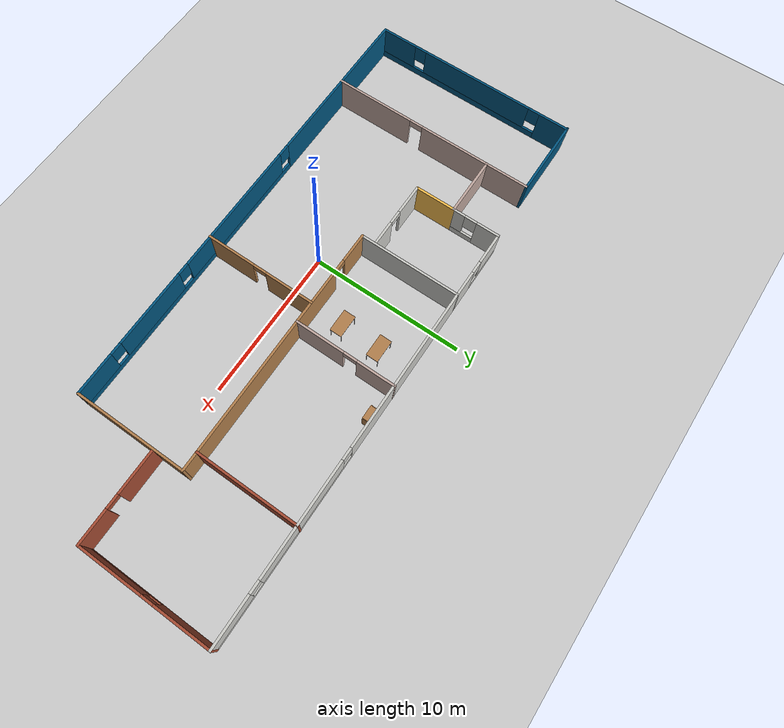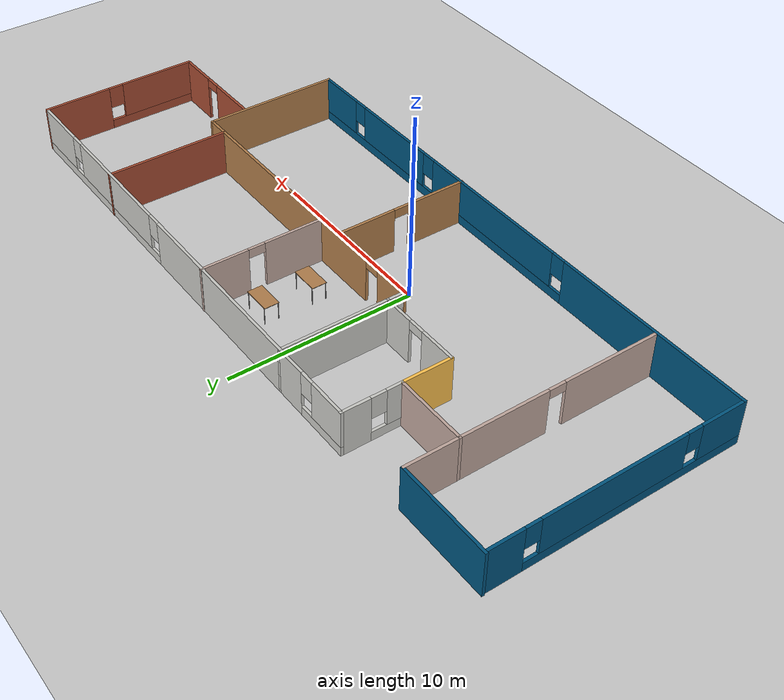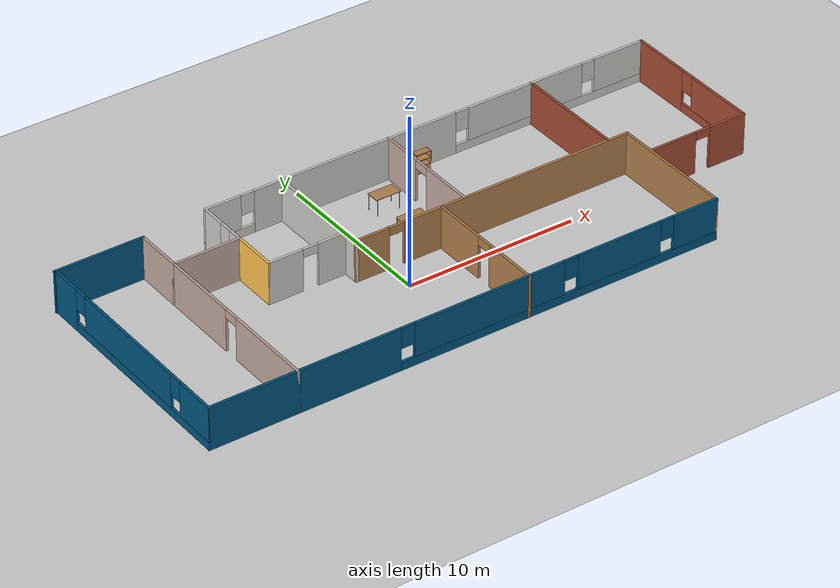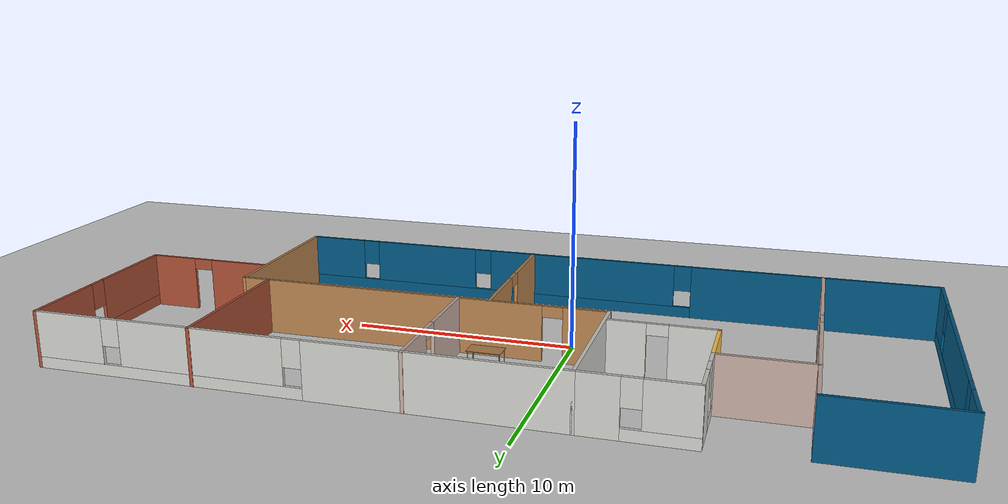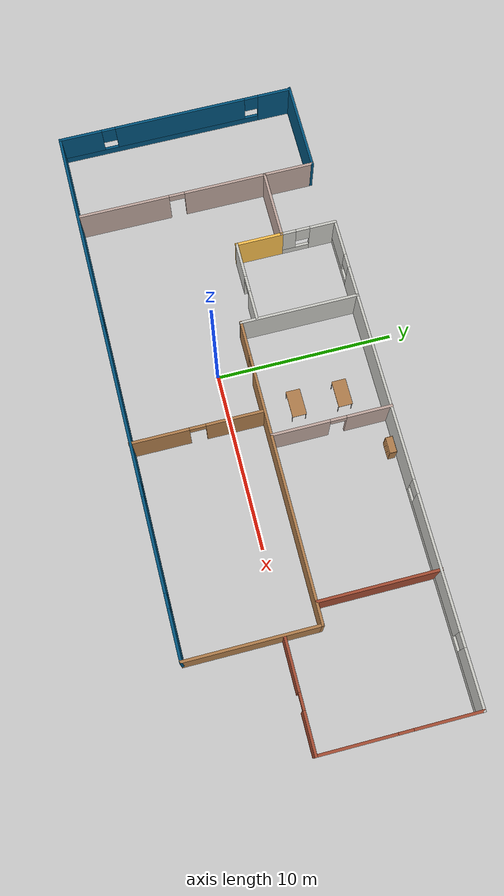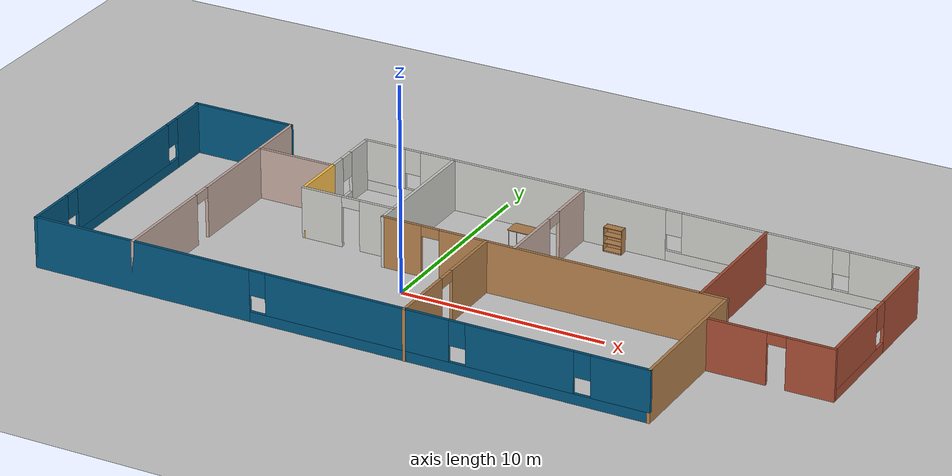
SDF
<sdf version="1.7">
 <world name="default">
  <model name="ground_plane">
   <static>1</static>
   <link name="link">
    <collision name="collision">
     <geometry><plane><normal>0 0 1</normal><size>100 100</size></plane></geometry>
     <surface>
      <contact><collide_bitmask>65535</collide_bitmask></contact>
      <friction><ode><mu>100</mu><mu2>50</mu2></ode></friction>
     </surface>
    </collision>
    <visual name="visual">
     <cast_shadows>0</cast_shadows>
     <geometry><plane><normal>0 0 1</normal><size>100 100</size></plane></geometry>
     <material>
      <script><uri>file://media/materials/scripts/gazebo.material</uri><name>Gazebo/Grey</name></script>
     </material>
    </visual>
   </link>
  </model>
  <model name="sohini_building">
   <pose>2.69266 1.47265 0 0 -0 0</pose>
   <link name="Wall_10">
    <collision name="Wall_10_Collision">
     <geometry><box><size>4 0.15 2.5</size></box></geometry>
     <pose>0 0 1.25 0 -0 0</pose>
    </collision>
    <visual name="Wall_10_Visual">
     <pose>0 0 1.25 0 -0 0</pose>
     <geometry><box><size>4 0.15 2.5</size></box></geometry>
     <material>
      <script><uri>file://media/materials/scripts/gazebo.material</uri><name>Gazebo/Grey</name></script>
      <ambient>0.760784 0.662745 0.627451 1</ambient>
     </material>
     <meta><layer>0</layer></meta>
    </visual>
    <pose>-11.175 3.87696 0 0 -0 3.14159</pose>
   </link>
   <link name="Wall_11">
    <collision name="Wall_11_Collision">
     <geometry><box><size>2.93882 0.15 2.5</size></box></geometry>
     <pose>0 0 1.25 0 -0 0</pose>
    </collision>
    <visual name="Wall_11_Visual">
     <pose>0 0 1.25 0 -0 0</pose>
     <geometry><box><size>2.93882 0.15 2.5</size></box></geometry>
     <material>
      <script><uri>file://media/materials/scripts/gazebo.material</uri><name>Gazebo/Grey</name></script>
      <ambient>0.760784 0.662745 0.627451 1</ambient>
     </material>
     <meta><layer>0</layer></meta>
    </visual>
    <pose>-13.1 5.27137 0 0 -0 1.5708</pose>
   </link>
   <link name="Wall_12">
    <collision name="Wall_12_Collision">
     <geometry><box><size>5.25 0.15 2.5</size></box></geometry>
     <pose>0 0 1.25 0 -0 0</pose>
    </collision>
    <visual name="Wall_12_Visual">
     <pose>0 0 1.25 0 -0 0</pose>
     <geometry><box><size>5.25 0.15 2.5</size></box></geometry>
     <material>
      <script><uri>file://media/materials/scripts/gazebo.material</uri><name>Gazebo/Grey</name></script>
      <ambient>0 0.333333 0.498039 1</ambient>
     </material>
     <meta><layer>0</layer></meta>
    </visual>
    <pose>-15.65 6.69637 0 0 -0 3.14159</pose>
   </link>
   <link name="Wall_14">
    <pose>6.775 6.97696 0 0 -0 0</pose>
    <visual name="Wall_14_Visual_0">
     <pose>-6.08464 0 1.25 0 -0 0</pose>
     <geometry><box><size>10.8307 0.15 2.5</size></box></geometry>
     <material>
      <script><uri>file://media/materials/scripts/gazebo.material</uri><name>Gazebo/CeilingTiled</name></script>
      <ambient>0.435294 0.796078 0.67451 1</ambient>
     </material>
     <meta><layer>0</layer></meta>
    </visual>
    <collision name="Wall_14_Collision_0">
     <geometry><box><size>10.8307 0.15 2.5</size></box></geometry>
     <pose>-6.08464 0 1.25 0 -0 0</pose>
    </collision>
    <visual name="Wall_14_Visual_1">
     <pose>5.41536 0 0.25 0 -0 0</pose>
     <geometry><box><size>12.1693 0.15 0.5</size></box></geometry>
     <material>
      <script><uri>file://media/materials/scripts/gazebo.material</uri><name>Gazebo/CeilingTiled</name></script>
      <ambient>0.435294 0.796078 0.67451 1</ambient>
     </material>
     <meta><layer>0</layer></meta>
    </visual>
    <collision name="Wall_14_Collision_1">
     <geometry><box><size>12.1693 0.15 0.5</size></box></geometry>
     <pose>5.41536 0 0.25 0 -0 0</pose>
    </collision>
    <visual name="Wall_14_Visual_2">
     <pose>3.79922 0 1.5 0 -0 0</pose>
     <geometry><box><size>7.337 0.15 2</size></box></geometry>
     <material>
      <script><uri>file://media/materials/scripts/gazebo.material</uri><name>Gazebo/CeilingTiled</name></script>
      <ambient>0.435294 0.796078 0.67451 1</ambient>
     </material>
     <meta><layer>0</layer></meta>
    </visual>
    <collision name="Wall_14_Collision_2">
     <geometry><box><size>7.337 0.15 2</size></box></geometry>
     <pose>3.79922 0 1.5 0 -0 0</pose>
    </collision>
    <visual name="Wall_14_Visual_3">
     <pose>9.88386 0 1.5 0 -0 0</pose>
     <geometry><box><size>3.23228 0.15 2</size></box></geometry>
     <material>
      <script><uri>file://media/materials/scripts/gazebo.material</uri><name>Gazebo/CeilingTiled</name></script>
      <ambient>0.435294 0.796078 0.67451 1</ambient>
     </material>
     <meta><layer>0</layer></meta>
    </visual>
    <collision name="Wall_14_Collision_3">
     <geometry><box><size>3.23228 0.15 2</size></box></geometry>
     <pose>9.88386 0 1.5 0 -0 0</pose>
    </collision>
    <visual name="Wall_14_Visual_4">
     <pose>-0.269276 0 1.9 0 -0 0</pose>
     <geometry><box><size>0.8 0.15 1.2</size></box></geometry>
     <material>
      <script><uri>file://media/materials/scripts/gazebo.material</uri><name>Gazebo/CeilingTiled</name></script>
      <ambient>0.435294 0.796078 0.67451 1</ambient>
     </material>
     <meta><layer>0</layer></meta>
    </visual>
    <collision name="Wall_14_Collision_4">
     <geometry><box><size>0.8 0.15 1.2</size></box></geometry>
     <pose>-0.269276 0 1.9 0 -0 0</pose>
    </collision>
    <visual name="Wall_14_Visual_5">
     <pose>7.86772 0 1.9 0 -0 0</pose>
     <geometry><box><size>0.8 0.15 1.2</size></box></geometry>
     <material>
      <script><uri>file://media/materials/scripts/gazebo.material</uri><name>Gazebo/CeilingTiled</name></script>
      <ambient>0.435294 0.796078 0.67451 1</ambient>
     </material>
     <meta><layer>0</layer></meta>
    </visual>
    <collision name="Wall_14_Collision_5">
     <geometry><box><size>0.8 0.15 1.2</size></box></geometry>
     <pose>7.86772 0 1.9 0 -0 0</pose>
    </collision>
   </link>
   <link name="Wall_15">
    <pose>18.2 2.67696 0 0 -0 -1.5708</pose>
    <visual name="Wall_15_Visual_0">
     <pose>-2.52709 0 1.25 0 -0 0</pose>
     <geometry><box><size>3.69583 0.15 2.5</size></box></geometry>
     <material>
      <script><uri>file://media/materials/scripts/gazebo.material</uri><name>Gazebo/Bricks</name></script>
      <ambient>1 1 1 1</ambient>
     </material>
     <meta><layer>0</layer></meta>
    </visual>
    <collision name="Wall_15_Collision_0">
     <geometry><box><size>3.69583 0.15 2.5</size></box></geometry>
     <pose>-2.52709 0 1.25 0 -0 0</pose>
    </collision>
    <visual name="Wall_15_Visual_1">
     <pose>1.84791 0 0.25 0 -0 0</pose>
     <geometry><box><size>5.05417 0.15 0.5</size></box></geometry>
     <material>
      <script><uri>file://media/materials/scripts/gazebo.material</uri><name>Gazebo/Bricks</name></script>
      <ambient>1 1 1 1</ambient>
     </material>
     <meta><layer>0</layer></meta>
    </visual>
    <collision name="Wall_15_Collision_1">
     <geometry><box><size>5.05417 0.15 0.5</size></box></geometry>
     <pose>1.84791 0 0.25 0 -0 0</pose>
    </collision>
    <visual name="Wall_15_Visual_2">
     <pose>2.24791 0 1.5 0 -0 0</pose>
     <geometry><box><size>4.25417 0.15 2</size></box></geometry>
     <material>
      <script><uri>file://media/materials/scripts/gazebo.material</uri><name>Gazebo/Bricks</name></script>
      <ambient>1 1 1 1</ambient>
     </material>
     <meta><layer>0</layer></meta>
    </visual>
    <collision name="Wall_15_Collision_2">
     <geometry><box><size>4.25417 0.15 2</size></box></geometry>
     <pose>2.24791 0 1.5 0 -0 0</pose>
    </collision>
    <visual name="Wall_15_Visual_3">
     <pose>-0.279172 0 1.9 0 -0 0</pose>
     <geometry><box><size>0.8 0.15 1.2</size></box></geometry>
     <material>
      <script><uri>file://media/materials/scripts/gazebo.material</uri><name>Gazebo/Bricks</name></script>
      <ambient>1 1 1 1</ambient>
     </material>
     <meta><layer>0</layer></meta>
    </visual>
    <collision name="Wall_15_Collision_3">
     <geometry><box><size>0.8 0.15 1.2</size></box></geometry>
     <pose>-0.279172 0 1.9 0 -0 0</pose>
    </collision>
   </link>
   <link name="Wall_16">
    <pose>15.275 -1.62304 0 0 -0 3.14159</pose>
    <visual name="Wall_16_Visual_0">
     <pose>-1.85242 0 1.25 0 -0 0</pose>
     <geometry><box><size>2.29516 0.15 2.5</size></box></geometry>
     <material>
      <script><uri>file://media/materials/scripts/gazebo.material</uri><name>Gazebo/Bricks</name></script>
      <ambient>1 1 1 1</ambient>
     </material>
     <meta><layer>0</layer></meta>
    </visual>
    <collision name="Wall_16_Collision_0">
     <geometry><box><size>2.29516 0.15 2.5</size></box></geometry>
     <pose>-1.85242 0 1.25 0 -0 0</pose>
    </collision>
    <visual name="Wall_16_Visual_1">
     <pose>1.59758 0 1.25 0 -0 0</pose>
     <geometry><box><size>2.80484 0.15 2.5</size></box></geometry>
     <material>
      <script><uri>file://media/materials/scripts/gazebo.material</uri><name>Gazebo/Bricks</name></script>
      <ambient>1 1 1 1</ambient>
     </material>
     <meta><layer>0</layer></meta>
    </visual>
    <collision name="Wall_16_Collision_1">
     <geometry><box><size>2.80484 0.15 2.5</size></box></geometry>
     <pose>1.59758 0 1.25 0 -0 0</pose>
    </collision>
    <visual name="Wall_16_Visual_2">
     <pose>-0.254841 0 2.25 0 -0 0</pose>
     <geometry><box><size>0.9 0.15 0.5</size></box></geometry>
     <material>
      <script><uri>file://media/materials/scripts/gazebo.material</uri><name>Gazebo/Bricks</name></script>
      <ambient>1 1 1 1</ambient>
     </material>
     <meta><layer>0</layer></meta>
    </visual>
    <collision name="Wall_16_Collision_2">
     <geometry><box><size>0.9 0.15 0.5</size></box></geometry>
     <pose>-0.254841 0 2.25 0 -0 0</pose>
    </collision>
   </link>
   <link name="Wall_18">
    <pose>1.94778 3.69404 0 0 -0 -1.5708</pose>
    <visual name="Wall_18_Visual_0">
     <pose>-2.09417 0 1.25 0 -0 0</pose>
     <geometry><box><size>2.56166 0.15 2.5</size></box></geometry>
     <material>
      <script><uri>file://media/materials/scripts/gazebo.material</uri><name>Gazebo/Grey</name></script>
      <ambient>0.760784 0.662745 0.627451 1</ambient>
     </material>
     <meta><layer>0</layer></meta>
    </visual>
    <collision name="Wall_18_Collision_0">
     <geometry><box><size>2.56166 0.15 2.5</size></box></geometry>
     <pose>-2.09417 0 1.25 0 -0 0</pose>
    </collision>
    <visual name="Wall_18_Visual_1">
     <pose>1.73083 0 1.25 0 -0 0</pose>
     <geometry><box><size>3.28834 0.15 2.5</size></box></geometry>
     <material>
      <script><uri>file://media/materials/scripts/gazebo.material</uri><name>Gazebo/Grey</name></script>
      <ambient>0.760784 0.662745 0.627451 1</ambient>
     </material>
     <meta><layer>0</layer></meta>
    </visual>
    <collision name="Wall_18_Collision_1">
     <geometry><box><size>3.28834 0.15 2.5</size></box></geometry>
     <pose>1.73083 0 1.25 0 -0 0</pose>
    </collision>
    <visual name="Wall_18_Visual_2">
     <pose>-0.363338 0 2.25 0 -0 0</pose>
     <geometry><box><size>0.9 0.15 0.5</size></box></geometry>
     <material>
      <script><uri>file://media/materials/scripts/gazebo.material</uri><name>Gazebo/Grey</name></script>
      <ambient>0.760784 0.662745 0.627451 1</ambient>
     </material>
     <meta><layer>0</layer></meta>
    </visual>
    <collision name="Wall_18_Collision_2">
     <geometry><box><size>0.9 0.15 0.5</size></box></geometry>
     <pose>-0.363338 0 2.25 0 -0 0</pose>
    </collision>
   </link>
   <link name="Wall_20">
    <collision name="Wall_20_Collision">
     <geometry><box><size>6.75 0.15 2.5</size></box></geometry>
     <pose>0 0 1.25 0 -0 0</pose>
    </collision>
    <visual name="Wall_20_Visual">
     <pose>0 0 1.25 0 -0 0</pose>
     <geometry><box><size>6.75 0.15 2.5</size></box></geometry>
     <material>
      <script><uri>file://media/materials/scripts/gazebo.material</uri><name>Gazebo/Bricks</name></script>
      <ambient>1 1 1 1</ambient>
     </material>
     <meta><layer>0</layer></meta>
    </visual>
    <pose>11.0025 3.69404 0 0 -0 -1.5708</pose>
   </link>
   <link name="Wall_22">
    <pose>-13.1 -1.54804 0 0 -0 -1.5708</pose>
    <visual name="Wall_22_Visual_0">
     <pose>-3.11636 0 1.25 0 -0 0</pose>
     <geometry><box><size>4.76728 0.15 2.5</size></box></geometry>
     <material>
      <script><uri>file://media/materials/scripts/gazebo.material</uri><name>Gazebo/Grey</name></script>
      <ambient>0.760784 0.662745 0.627451 1</ambient>
     </material>
     <meta><layer>0</layer></meta>
    </visual>
    <collision name="Wall_22_Collision_0">
     <geometry><box><size>4.76728 0.15 2.5</size></box></geometry>
     <pose>-3.11636 0 1.25 0 -0 0</pose>
    </collision>
    <visual name="Wall_22_Visual_1">
     <pose>2.83364 0 1.25 0 -0 0</pose>
     <geometry><box><size>5.33272 0.15 2.5</size></box></geometry>
     <material>
      <script><uri>file://media/materials/scripts/gazebo.material</uri><name>Gazebo/Grey</name></script>
      <ambient>0.760784 0.662745 0.627451 1</ambient>
     </material>
     <meta><layer>0</layer></meta>
    </visual>
    <collision name="Wall_22_Collision_1">
     <geometry><box><size>5.33272 0.15 2.5</size></box></geometry>
     <pose>2.83364 0 1.25 0 -0 0</pose>
    </collision>
    <visual name="Wall_22_Visual_2">
     <pose>-0.282721 0 2.25 0 -0 0</pose>
     <geometry><box><size>0.9 0.15 0.5</size></box></geometry>
     <material>
      <script><uri>file://media/materials/scripts/gazebo.material</uri><name>Gazebo/Grey</name></script>
      <ambient>0.760784 0.662745 0.627451 1</ambient>
     </material>
     <meta><layer>0</layer></meta>
    </visual>
    <collision name="Wall_22_Collision_2">
     <geometry><box><size>0.9 0.15 0.5</size></box></geometry>
     <pose>-0.282721 0 2.25 0 -0 0</pose>
    </collision>
   </link>
   <link name="Wall_26">
    <collision name="Wall_26_Collision">
     <geometry><box><size>2.75 0.15 2.5</size></box></geometry>
     <pose>0 0 1.25 0 -0 0</pose>
    </collision>
    <visual name="Wall_26_Visual">
     <pose>0 0 1.25 0 -0 0</pose>
     <geometry><box><size>2.75 0.15 2.5</size></box></geometry>
     <material>
      <script><uri>file://media/materials/scripts/gazebo.material</uri><name>Gazebo/Grey</name></script>
      <ambient>1 0.764706 0.305882 1</ambient>
     </material>
     <meta><layer>0</layer></meta>
    </visual>
    <pose>-9.25 2.57696 0 0 -0 -1.5708</pose>
   </link>
   <link name="Wall_27">
    <pose>-6.95 1.27696 0 0 -0 0</pose>
    <visual name="Wall_27_Visual_0">
     <pose>-1.33801 0 1.25 0 -0 0</pose>
     <geometry><box><size>2.07397 0.15 2.5</size></box></geometry>
     <material>
      <script><uri>file://media/materials/scripts/gazebo.material</uri><name>Gazebo/CeilingTiled</name></script>
      <ambient>1 0.764706 0.305882 1</ambient>
     </material>
     <meta><layer>0</layer></meta>
    </visual>
    <collision name="Wall_27_Collision_0">
     <geometry><box><size>2.07397 0.15 2.5</size></box></geometry>
     <pose>-1.33801 0 1.25 0 -0 0</pose>
    </collision>
    <visual name="Wall_27_Visual_1">
     <pose>1.48699 0 1.25 0 -0 0</pose>
     <geometry><box><size>1.77602 0.15 2.5</size></box></geometry>
     <material>
      <script><uri>file://media/materials/scripts/gazebo.material</uri><name>Gazebo/CeilingTiled</name></script>
      <ambient>1 0.764706 0.305882 1</ambient>
     </material>
     <meta><layer>0</layer></meta>
    </visual>
    <collision name="Wall_27_Collision_1">
     <geometry><box><size>1.77602 0.15 2.5</size></box></geometry>
     <pose>1.48699 0 1.25 0 -0 0</pose>
    </collision>
    <visual name="Wall_27_Visual_2">
     <pose>0.148975 0 2.25 0 -0 0</pose>
     <geometry><box><size>0.9 0.15 0.5</size></box></geometry>
     <material>
      <script><uri>file://media/materials/scripts/gazebo.material</uri><name>Gazebo/CeilingTiled</name></script>
      <ambient>1 0.764706 0.305882 1</ambient>
     </material>
     <meta><layer>0</layer></meta>
    </visual>
    <collision name="Wall_27_Collision_2">
     <geometry><box><size>0.9 0.15 0.5</size></box></geometry>
     <pose>0.148975 0 2.25 0 -0 0</pose>
    </collision>
   </link>
   <link name="Wall_29">
    <pose>0.540629 -3.31904 0 0 -0 -1.5708</pose>
    <visual name="Wall_29_Visual_0">
     <pose>-2.10209 0 1.25 0 -0 0</pose>
     <geometry><box><size>3.29583 0.15 2.5</size></box></geometry>
     <material>
      <script><uri>file://media/materials/scripts/gazebo.material</uri><name>Gazebo/Wood</name></script>
      <ambient>1 1 1 1</ambient>
     </material>
     <meta><layer>0</layer></meta>
    </visual>
    <collision name="Wall_29_Collision_0">
     <geometry><box><size>3.29583 0.15 2.5</size></box></geometry>
     <pose>-2.10209 0 1.25 0 -0 0</pose>
    </collision>
    <visual name="Wall_29_Visual_1">
     <pose>2.09791 0 1.25 0 -0 0</pose>
     <geometry><box><size>3.30417 0.15 2.5</size></box></geometry>
     <material>
      <script><uri>file://media/materials/scripts/gazebo.material</uri><name>Gazebo/Wood</name></script>
      <ambient>1 1 1 1</ambient>
     </material>
     <meta><layer>0</layer></meta>
    </visual>
    <collision name="Wall_29_Collision_1">
     <geometry><box><size>3.30417 0.15 2.5</size></box></geometry>
     <pose>2.09791 0 1.25 0 -0 0</pose>
    </collision>
    <visual name="Wall_29_Visual_2">
     <pose>-0.004173 0 2.25 0 -0 0</pose>
     <geometry><box><size>0.9 0.15 0.5</size></box></geometry>
     <material>
      <script><uri>file://media/materials/scripts/gazebo.material</uri><name>Gazebo/Wood</name></script>
      <ambient>1 1 1 1</ambient>
     </material>
     <meta><layer>0</layer></meta>
    </visual>
    <collision name="Wall_29_Collision_2">
     <geometry><box><size>0.9 0.15 0.5</size></box></geometry>
     <pose>-0.004173 0 2.25 0 -0 0</pose>
    </collision>
   </link>
   <link name="Wall_3">
    <pose>-18.15 -0.173043 0 0 -0 -1.5708</pose>
    <visual name="Wall_3_Visual_0">
     <pose>-5.90566 0 1.25 0 -0 0</pose>
     <geometry><box><size>1.93868 0.15 2.5</size></box></geometry>
     <material>
      <script><uri>file://media/materials/scripts/gazebo.material</uri><name>Gazebo/Grey</name></script>
      <ambient>0 0.333333 0.498039 1</ambient>
     </material>
     <meta><layer>0</layer></meta>
    </visual>
    <collision name="Wall_3_Collision_0">
     <geometry><box><size>1.93868 0.15 2.5</size></box></geometry>
     <pose>-5.90566 0 1.25 0 -0 0</pose>
    </collision>
    <visual name="Wall_3_Visual_1">
     <pose>0.969339 0 0.25 0 -0 0</pose>
     <geometry><box><size>11.8113 0.15 0.5</size></box></geometry>
     <material>
      <script><uri>file://media/materials/scripts/gazebo.material</uri><name>Gazebo/Grey</name></script>
      <ambient>0 0.333333 0.498039 1</ambient>
     </material>
     <meta><layer>0</layer></meta>
    </visual>
    <collision name="Wall_3_Collision_1">
     <geometry><box><size>11.8113 0.15 0.5</size></box></geometry>
     <pose>0.969339 0 0.25 0 -0 0</pose>
    </collision>
    <visual name="Wall_3_Visual_2">
     <pose>-0.284281 0 1.5 0 -0 0</pose>
     <geometry><box><size>7.70408 0.15 2</size></box></geometry>
     <material>
      <script><uri>file://media/materials/scripts/gazebo.material</uri><name>Gazebo/Grey</name></script>
      <ambient>0 0.333333 0.498039 1</ambient>
     </material>
     <meta><layer>0</layer></meta>
    </visual>
    <collision name="Wall_3_Collision_2">
     <geometry><box><size>7.70408 0.15 2</size></box></geometry>
     <pose>-0.284281 0 1.5 0 -0 0</pose>
    </collision>
    <visual name="Wall_3_Visual_3">
     <pose>5.62138 0 1.5 0 -0 0</pose>
     <geometry><box><size>2.50724 0.15 2</size></box></geometry>
     <material>
      <script><uri>file://media/materials/scripts/gazebo.material</uri><name>Gazebo/Grey</name></script>
      <ambient>0 0.333333 0.498039 1</ambient>
     </material>
     <meta><layer>0</layer></meta>
    </visual>
    <collision name="Wall_3_Collision_3">
     <geometry><box><size>2.50724 0.15 2</size></box></geometry>
     <pose>5.62138 0 1.5 0 -0 0</pose>
    </collision>
    <visual name="Wall_3_Visual_4">
     <pose>-4.53632 0 1.9 0 -0 0</pose>
     <geometry><box><size>0.8 0.15 1.2</size></box></geometry>
     <material>
      <script><uri>file://media/materials/scripts/gazebo.material</uri><name>Gazebo/Grey</name></script>
      <ambient>0 0.333333 0.498039 1</ambient>
     </material>
     <meta><layer>0</layer></meta>
    </visual>
    <collision name="Wall_3_Collision_4">
     <geometry><box><size>0.8 0.15 1.2</size></box></geometry>
     <pose>-4.53632 0 1.9 0 -0 0</pose>
    </collision>
    <visual name="Wall_3_Visual_5">
     <pose>3.96776 0 1.9 0 -0 0</pose>
     <geometry><box><size>0.8 0.15 1.2</size></box></geometry>
     <material>
      <script><uri>file://media/materials/scripts/gazebo.material</uri><name>Gazebo/Grey</name></script>
      <ambient>0 0.333333 0.498039 1</ambient>
     </material>
     <meta><layer>0</layer></meta>
    </visual>
    <collision name="Wall_3_Collision_5">
     <geometry><box><size>0.8 0.15 1.2</size></box></geometry>
     <pose>3.96776 0 1.9 0 -0 0</pose>
    </collision>
   </link>
   <link name="Wall_4">
    <pose>-2.975 -6.97304 0 0 -0 0</pose>
    <visual name="Wall_4_Visual_0">
     <pose>-9.70742 0 1.25 0 -0 0</pose>
     <geometry><box><size>11.0852 0.15 2.5</size></box></geometry>
     <material>
      <script><uri>file://media/materials/scripts/gazebo.material</uri><name>Gazebo/Grey</name></script>
      <ambient>0 0.333333 0.498039 1</ambient>
     </material>
     <meta><layer>0</layer></meta>
    </visual>
    <collision name="Wall_4_Collision_0">
     <geometry><box><size>11.0852 0.15 2.5</size></box></geometry>
     <pose>-9.70742 0 1.25 0 -0 0</pose>
    </collision>
    <visual name="Wall_4_Visual_1">
     <pose>5.54258 0 0.25 0 -0 0</pose>
     <geometry><box><size>19.4148 0.15 0.5</size></box></geometry>
     <material>
      <script><uri>file://media/materials/scripts/gazebo.material</uri><name>Gazebo/Grey</name></script>
      <ambient>0 0.333333 0.498039 1</ambient>
     </material>
     <meta><layer>0</layer></meta>
    </visual>
    <collision name="Wall_4_Collision_1">
     <geometry><box><size>19.4148 0.15 0.5</size></box></geometry>
     <pose>5.54258 0 0.25 0 -0 0</pose>
    </collision>
    <visual name="Wall_4_Visual_2">
     <pose>1.16018 0 1.5 0 -0 0</pose>
     <geometry><box><size>9.05005 0.15 2</size></box></geometry>
     <material>
      <script><uri>file://media/materials/scripts/gazebo.material</uri><name>Gazebo/Grey</name></script>
      <ambient>0 0.333333 0.498039 1</ambient>
     </material>
     <meta><layer>0</layer></meta>
    </visual>
    <collision name="Wall_4_Collision_2">
     <geometry><box><size>9.05005 0.15 2</size></box></geometry>
     <pose>1.16018 0 1.5 0 -0 0</pose>
    </collision>
    <visual name="Wall_4_Visual_3">
     <pose>9.06776 0 1.5 0 -0 0</pose>
     <geometry><box><size>5.16509 0.15 2</size></box></geometry>
     <material>
      <script><uri>file://media/materials/scripts/gazebo.material</uri><name>Gazebo/Grey</name></script>
      <ambient>0 0.333333 0.498039 1</ambient>
     </material>
     <meta><layer>0</layer></meta>
    </visual>
    <collision name="Wall_4_Collision_3">
     <geometry><box><size>5.16509 0.15 2</size></box></geometry>
     <pose>9.06776 0 1.5 0 -0 0</pose>
    </collision>
    <visual name="Wall_4_Visual_4">
     <pose>13.8502 0 1.5 0 -0 0</pose>
     <geometry><box><size>2.7997 0.15 2</size></box></geometry>
     <material>
      <script><uri>file://media/materials/scripts/gazebo.material</uri><name>Gazebo/Grey</name></script>
      <ambient>0 0.333333 0.498039 1</ambient>
     </material>
     <meta><layer>0</layer></meta>
    </visual>
    <collision name="Wall_4_Collision_4">
     <geometry><box><size>2.7997 0.15 2</size></box></geometry>
     <pose>13.8502 0 1.5 0 -0 0</pose>
    </collision>
    <visual name="Wall_4_Visual_5">
     <pose>-3.76485 0 1.9 0 -0 0</pose>
     <geometry><box><size>0.8 0.15 1.2</size></box></geometry>
     <material>
      <script><uri>file://media/materials/scripts/gazebo.material</uri><name>Gazebo/Grey</name></script>
      <ambient>0 0.333333 0.498039 1</ambient>
     </material>
     <meta><layer>0</layer></meta>
    </visual>
    <collision name="Wall_4_Collision_5">
     <geometry><box><size>0.8 0.15 1.2</size></box></geometry>
     <pose>-3.76485 0 1.9 0 -0 0</pose>
    </collision>
    <visual name="Wall_4_Visual_6">
     <pose>6.08521 0 1.9 0 -0 0</pose>
     <geometry><box><size>0.8 0.15 1.2</size></box></geometry>
     <material>
      <script><uri>file://media/materials/scripts/gazebo.material</uri><name>Gazebo/Grey</name></script>
      <ambient>0 0.333333 0.498039 1</ambient>
     </material>
     <meta><layer>0</layer></meta>
    </visual>
    <collision name="Wall_4_Collision_6">
     <geometry><box><size>0.8 0.15 1.2</size></box></geometry>
     <pose>6.08521 0 1.9 0 -0 0</pose>
    </collision>
    <visual name="Wall_4_Visual_7">
     <pose>12.0503 0 1.9 0 -0 0</pose>
     <geometry><box><size>0.8 0.15 1.2</size></box></geometry>
     <material>
      <script><uri>file://media/materials/scripts/gazebo.material</uri><name>Gazebo/Grey</name></script>
      <ambient>0 0.333333 0.498039 1</ambient>
     </material>
     <meta><layer>0</layer></meta>
    </visual>
    <collision name="Wall_4_Collision_7">
     <geometry><box><size>0.8 0.15 1.2</size></box></geometry>
     <pose>12.0503 0 1.9 0 -0 0</pose>
    </collision>
   </link>
   <link name="Wall_5">
    <collision name="Wall_5_Collision">
     <geometry><box><size>7.5 0.15 2.5</size></box></geometry>
     <pose>0 0 1.25 0 -0 0</pose>
    </collision>
    <visual name="Wall_5_Visual">
     <pose>0 0 1.25 0 -0 0</pose>
     <geometry><box><size>7.5 0.15 2.5</size></box></geometry>
     <material>
      <script><uri>file://media/materials/scripts/gazebo.material</uri><name>Gazebo/Wood</name></script>
      <ambient>1 1 1 1</ambient>
     </material>
     <meta><layer>0</layer></meta>
    </visual>
    <pose>12.2 -3.29804 0 0 -0 1.5708</pose>
   </link>
   <link name="Wall_6">
    <pose>3.775 0.376957 0 0 -0 3.14159</pose>
    <visual name="Wall_6_Visual_0">
     <pose>-1.46596 0 1.25 0 -0 0</pose>
     <geometry><box><size>14.0681 0.15 2.5</size></box></geometry>
     <material>
      <script><uri>file://media/materials/scripts/gazebo.material</uri><name>Gazebo/Wood</name></script>
      <ambient>1 1 1 1</ambient>
     </material>
     <meta><layer>0</layer></meta>
    </visual>
    <collision name="Wall_6_Collision_0">
     <geometry><box><size>14.0681 0.15 2.5</size></box></geometry>
     <pose>-1.46596 0 1.25 0 -0 0</pose>
    </collision>
    <visual name="Wall_6_Visual_1">
     <pose>7.48404 0 1.25 0 -0 0</pose>
     <geometry><box><size>2.03192 0.15 2.5</size></box></geometry>
     <material>
      <script><uri>file://media/materials/scripts/gazebo.material</uri><name>Gazebo/Wood</name></script>
      <ambient>1 1 1 1</ambient>
     </material>
     <meta><layer>0</layer></meta>
    </visual>
    <collision name="Wall_6_Collision_1">
     <geometry><box><size>2.03192 0.15 2.5</size></box></geometry>
     <pose>7.48404 0 1.25 0 -0 0</pose>
    </collision>
    <visual name="Wall_6_Visual_2">
     <pose>6.01808 0 2.25 0 -0 0</pose>
     <geometry><box><size>0.9 0.15 0.5</size></box></geometry>
     <material>
      <script><uri>file://media/materials/scripts/gazebo.material</uri><name>Gazebo/Wood</name></script>
      <ambient>1 1 1 1</ambient>
     </material>
     <meta><layer>0</layer></meta>
    </visual>
    <collision name="Wall_6_Collision_2">
     <geometry><box><size>0.9 0.15 0.5</size></box></geometry>
     <pose>6.01808 0 2.25 0 -0 0</pose>
    </collision>
   </link>
   <link name="Wall_7">
    <collision name="Wall_7_Collision">
     <geometry><box><size>6.75 0.15 2.5</size></box></geometry>
     <pose>0 0 1.25 0 -0 0</pose>
    </collision>
    <visual name="Wall_7_Visual">
     <pose>0 0 1.25 0 -0 0</pose>
     <geometry><box><size>6.75 0.15 2.5</size></box></geometry>
     <material>
      <script><uri>file://media/materials/scripts/gazebo.material</uri><name>Gazebo/CeilingTiled</name></script>
      <ambient>1 0.764706 0.305882 1</ambient>
     </material>
     <meta><layer>0</layer></meta>
    </visual>
    <pose>-4.65 3.67696 0 0 -0 1.5708</pose>
   </link>
   <link name="Wall_8">
    <pose>-6.95 6.97696 0 0 -0 3.14159</pose>
    <visual name="Wall_8_Visual_0">
     <pose>-1.47728 0 1.25 0 -0 0</pose>
     <geometry><box><size>1.79543 0.15 2.5</size></box></geometry>
     <material>
      <script><uri>file://media/materials/scripts/gazebo.material</uri><name>Gazebo/CeilingTiled</name></script>
      <ambient>1 0.764706 0.305882 1</ambient>
     </material>
     <meta><layer>0</layer></meta>
    </visual>
    <collision name="Wall_8_Collision_0">
     <geometry><box><size>1.79543 0.15 2.5</size></box></geometry>
     <pose>-1.47728 0 1.25 0 -0 0</pose>
    </collision>
    <visual name="Wall_8_Visual_1">
     <pose>0.897718 0 0.25 0 -0 0</pose>
     <geometry><box><size>2.95457 0.15 0.5</size></box></geometry>
     <material>
      <script><uri>file://media/materials/scripts/gazebo.material</uri><name>Gazebo/CeilingTiled</name></script>
      <ambient>1 0.764706 0.305882 1</ambient>
     </material>
     <meta><layer>0</layer></meta>
    </visual>
    <collision name="Wall_8_Collision_1">
     <geometry><box><size>2.95457 0.15 0.5</size></box></geometry>
     <pose>0.897718 0 0.25 0 -0 0</pose>
    </collision>
    <visual name="Wall_8_Visual_2">
     <pose>1.29772 0 1.5 0 -0 0</pose>
     <geometry><box><size>2.15456 0.15 2</size></box></geometry>
     <material>
      <script><uri>file://media/materials/scripts/gazebo.material</uri><name>Gazebo/CeilingTiled</name></script>
      <ambient>1 0.764706 0.305882 1</ambient>
     </material>
     <meta><layer>0</layer></meta>
    </visual>
    <collision name="Wall_8_Collision_2">
     <geometry><box><size>2.15456 0.15 2</size></box></geometry>
     <pose>1.29772 0 1.5 0 -0 0</pose>
    </collision>
    <visual name="Wall_8_Visual_3">
     <pose>-0.179565 0 1.9 0 -0 0</pose>
     <geometry><box><size>0.8 0.15 1.2</size></box></geometry>
     <material>
      <script><uri>file://media/materials/scripts/gazebo.material</uri><name>Gazebo/CeilingTiled</name></script>
      <ambient>1 0.764706 0.305882 1</ambient>
     </material>
     <meta><layer>0</layer></meta>
    </visual>
    <collision name="Wall_8_Collision_3">
     <geometry><box><size>0.8 0.15 1.2</size></box></geometry>
     <pose>-0.179565 0 1.9 0 -0 0</pose>
    </collision>
   </link>
   <link name="Wall_9">
    <pose>-9.25 5.42696 0 0 -0 -1.5708</pose>
    <visual name="Wall_9_Visual_0">
     <pose>-0.847744 0 1.25 0 -0 0</pose>
     <geometry><box><size>1.55451 0.15 2.5</size></box></geometry>
     <material>
      <script><uri>file://media/materials/scripts/gazebo.material</uri><name>Gazebo/CeilingTiled</name></script>
      <ambient>1 0.764706 0.305882 1</ambient>
     </material>
     <meta><layer>0</layer></meta>
    </visual>
    <collision name="Wall_9_Collision_0">
     <geometry><box><size>1.55451 0.15 2.5</size></box></geometry>
     <pose>-0.847744 0 1.25 0 -0 0</pose>
    </collision>
    <visual name="Wall_9_Visual_1">
     <pose>0.777256 0 0.25 0 -0 0</pose>
     <geometry><box><size>1.69549 0.15 0.5</size></box></geometry>
     <material>
      <script><uri>file://media/materials/scripts/gazebo.material</uri><name>Gazebo/CeilingTiled</name></script>
      <ambient>1 0.764706 0.305882 1</ambient>
     </material>
     <meta><layer>0</layer></meta>
    </visual>
    <collision name="Wall_9_Collision_1">
     <geometry><box><size>1.69549 0.15 0.5</size></box></geometry>
     <pose>0.777256 0 0.25 0 -0 0</pose>
    </collision>
    <visual name="Wall_9_Visual_2">
     <pose>1.17726 0 1.5 0 -0 0</pose>
     <geometry><box><size>0.895488 0.15 2</size></box></geometry>
     <material>
      <script><uri>file://media/materials/scripts/gazebo.material</uri><name>Gazebo/CeilingTiled</name></script>
      <ambient>1 0.764706 0.305882 1</ambient>
     </material>
     <meta><layer>0</layer></meta>
    </visual>
    <collision name="Wall_9_Collision_2">
     <geometry><box><size>0.895488 0.15 2</size></box></geometry>
     <pose>1.17726 0 1.5 0 -0 0</pose>
    </collision>
    <visual name="Wall_9_Visual_3">
     <pose>0.329512 0 1.9 0 -0 0</pose>
     <geometry><box><size>0.8 0.15 1.2</size></box></geometry>
     <material>
      <script><uri>file://media/materials/scripts/gazebo.material</uri><name>Gazebo/CeilingTiled</name></script>
      <ambient>1 0.764706 0.305882 1</ambient>
     </material>
     <meta><layer>0</layer></meta>
    </visual>
    <collision name="Wall_9_Collision_3">
     <geometry><box><size>0.8 0.15 1.2</size></box></geometry>
     <pose>0.329512 0 1.9 0 -0 0</pose>
    </collision>
   </link>
   <static>1</static>
  </model>
  <model name="bookshelf_0">
   <static>1</static>
   <link name="link">
    <inertial><mass>1</mass></inertial>
    <collision name="back">
     <pose>0 0.005 0.6 0 -0 0</pose>
     <geometry><box><size>0.9 0.01 1.2</size></box></geometry>
    </collision>
    <visual name="visual1">
     <pose>0 0.005 0.6 0 -0 0</pose>
     <geometry><box><size>0.9 0.01 1.2</size></box></geometry>
     <material>
      <script><uri>file://media/materials/scripts/gazebo.material</uri><name>Gazebo/Wood</name></script>
     </material>
    </visual>
    <collision name="left_side">
     <pose>0.45 -0.195 0.6 0 -0 0</pose>
     <geometry><box><size>0.02 0.4 1.2</size></box></geometry>
    </collision>
    <visual name="visual2">
     <pose>0.45 -0.195 0.6 0 -0 0</pose>
     <geometry><box><size>0.02 0.4 1.2</size></box></geometry>
     <material>
      <script><uri>file://media/materials/scripts/gazebo.material</uri><name>Gazebo/Wood</name></script>
     </material>
    </visual>
    <collision name="right_side">
     <pose>-0.45 -0.195 0.6 0 -0 0</pose>
     <geometry><box><size>0.02 0.4 1.2</size></box></geometry>
    </collision>
    <visual name="visual3">
     <pose>-0.45 -0.195 0.6 0 -0 0</pose>
     <geometry><box><size>0.02 0.4 1.2</size></box></geometry>
     <material>
      <script><uri>file://media/materials/scripts/gazebo.material</uri><name>Gazebo/Wood</name></script>
     </material>
    </visual>
    <collision name="bottom">
     <pose>0 -0.195 0.03 0 -0 0</pose>
     <geometry><box><size>0.88 0.4 0.06</size></box></geometry>
    </collision>
    <visual name="visual4">
     <pose>0 -0.195 0.03 0 -0 0</pose>
     <geometry><box><size>0.88 0.4 0.06</size></box></geometry>
     <material>
      <script><uri>file://media/materials/scripts/gazebo.material</uri><name>Gazebo/Wood</name></script>
     </material>
    </visual>
    <collision name="top">
     <pose>0 -0.195 1.19 0 -0 0</pose>
     <geometry><box><size>0.88 0.4 0.02</size></box></geometry>
    </collision>
    <visual name="visual5">
     <pose>0 -0.195 1.19 0 -0 0</pose>
     <geometry><box><size>0.88 0.4 0.02</size></box></geometry>
     <material>
      <script><uri>file://media/materials/scripts/gazebo.material</uri><name>Gazebo/Wood</name></script>
     </material>
    </visual>
    <collision name="low_shelf">
     <pose>0 -0.195 0.43 0 -0 0</pose>
     <geometry><box><size>0.88 0.4 0.02</size></box></geometry>
    </collision>
    <visual name="visual6">
     <pose>0 -0.195 0.43 0 -0 0</pose>
     <geometry><box><size>0.88 0.4 0.02</size></box></geometry>
     <material>
      <script><uri>file://media/materials/scripts/gazebo.material</uri><name>Gazebo/Wood</name></script>
     </material>
    </visual>
    <collision name="high_shelf">
     <pose>0 -0.195 0.8 0 -0 0</pose>
     <geometry><box><size>0.88 0.4 0.02</size></box></geometry>
    </collision>
    <visual name="visual7">
     <pose>0 -0.195 0.8 0 -0 0</pose>
     <geometry><box><size>0.88 0.4 0.02</size></box></geometry>
     <material>
      <script><uri>file://media/materials/scripts/gazebo.material</uri><name>Gazebo/Wood</name></script>
     </material>
    </visual>
   </link>
   <pose>6.40986 8.26689 0 0 -0 0</pose>
  </model>
  <model name="table_5">
   <static>1</static>
   <link name="link">
    <collision name="surface">
     <pose>0 0 1 0 -0 0</pose>
     <geometry><box><size>1.5 0.8 0.03</size></box></geometry>
     <surface><friction><ode><mu>0.6</mu><mu2>0.6</mu2></ode></friction></surface>
    </collision>
    <visual name="visual1">
     <pose>0 0 1 0 -0 0</pose>
     <geometry><box><size>1.5 0.8 0.03</size></box></geometry>
     <material>
      <script><uri>file://media/materials/scripts/gazebo.material</uri><name>Gazebo/Wood</name></script>
     </material>
    </visual>
    <collision name="front_left_leg">
     <pose>0.68 0.38 0.5 0 -0 0</pose>
     <geometry><cylinder><radius>0.02</radius><length>1</length></cylinder></geometry>
    </collision>
    <visual name="front_left_leg">
     <pose>0.68 0.38 0.5 0 -0 0</pose>
     <geometry><cylinder><radius>0.02</radius><length>1</length></cylinder></geometry>
     <material>
      <script><uri>file://media/materials/scripts/gazebo.material</uri><name>Gazebo/Grey</name></script>
     </material>
    </visual>
    <collision name="front_right_leg">
     <pose>0.68 -0.38 0.5 0 -0 0</pose>
     <geometry><cylinder><radius>0.02</radius><length>1</length></cylinder></geometry>
    </collision>
    <visual name="front_right_leg">
     <pose>0.68 -0.38 0.5 0 -0 0</pose>
     <geometry><cylinder><radius>0.02</radius><length>1</length></cylinder></geometry>
     <material>
      <script><uri>file://media/materials/scripts/gazebo.material</uri><name>Gazebo/Grey</name></script>
     </material>
    </visual>
    <collision name="back_right_leg">
     <pose>-0.68 -0.38 0.5 0 -0 0</pose>
     <geometry><cylinder><radius>0.02</radius><length>1</length></cylinder></geometry>
    </collision>
    <visual name="back_right_leg">
     <pose>-0.68 -0.38 0.5 0 -0 0</pose>
     <geometry><cylinder><radius>0.02</radius><length>1</length></cylinder></geometry>
     <material>
      <script><uri>file://media/materials/scripts/gazebo.material</uri><name>Gazebo/Grey</name></script>
     </material>
    </visual>
    <collision name="back_left_leg">
     <pose>-0.68 0.38 0.5 0 -0 0</pose>
     <geometry><cylinder><radius>0.02</radius><length>1</length></cylinder></geometry>
    </collision>
    <visual name="back_left_leg">
     <pose>-0.68 0.38 0.5 0 -0 0</pose>
     <geometry><cylinder><radius>0.02</radius><length>1</length></cylinder></geometry>
     <material>
      <script><uri>file://media/materials/scripts/gazebo.material</uri><name>Gazebo/Grey</name></script>
     </material>
    </visual>
   </link>
   <pose>2.86173 6.33154 0 0 -0 0</pose>
  </model>
  <model name="table_6">
   <static>1</static>
   <link name="link">
    <collision name="surface">
     <pose>0 0 1 0 -0 0</pose>
     <geometry><box><size>1.5 0.8 0.03</size></box></geometry>
     <surface><friction><ode><mu>0.6</mu><mu2>0.6</mu2></ode></friction></surface>
    </collision>
    <visual name="visual1">
     <pose>0 0 1 0 -0 0</pose>
     <geometry><box><size>1.5 0.8 0.03</size></box></geometry>
     <material>
      <script><uri>file://media/materials/scripts/gazebo.material</uri><name>Gazebo/Wood</name></script>
     </material>
    </visual>
    <collision name="front_left_leg">
     <pose>0.68 0.38 0.5 0 -0 0</pose>
     <geometry><cylinder><radius>0.02</radius><length>1</length></cylinder></geometry>
    </collision>
    <visual name="front_left_leg">
     <pose>0.68 0.38 0.5 0 -0 0</pose>
     <geometry><cylinder><radius>0.02</radius><length>1</length></cylinder></geometry>
     <material>
      <script><uri>file://media/materials/scripts/gazebo.material</uri><name>Gazebo/Grey</name></script>
     </material>
    </visual>
    <collision name="front_right_leg">
     <pose>0.68 -0.38 0.5 0 -0 0</pose>
     <geometry><cylinder><radius>0.02</radius><length>1</length></cylinder></geometry>
    </collision>
    <visual name="front_right_leg">
     <pose>0.68 -0.38 0.5 0 -0 0</pose>
     <geometry><cylinder><radius>0.02</radius><length>1</length></cylinder></geometry>
     <material>
      <script><uri>file://media/materials/scripts/gazebo.material</uri><name>Gazebo/Grey</name></script>
     </material>
    </visual>
    <collision name="back_right_leg">
     <pose>-0.68 -0.38 0.5 0 -0 0</pose>
     <geometry><cylinder><radius>0.02</radius><length>1</length></cylinder></geometry>
    </collision>
    <visual name="back_right_leg">
     <pose>-0.68 -0.38 0.5 0 -0 0</pose>
     <geometry><cylinder><radius>0.02</radius><length>1</length></cylinder></geometry>
     <material>
      <script><uri>file://media/materials/scripts/gazebo.material</uri><name>Gazebo/Grey</name></script>
     </material>
    </visual>
    <collision name="back_left_leg">
     <pose>-0.68 0.38 0.5 0 -0 0</pose>
     <geometry><cylinder><radius>0.02</radius><length>1</length></cylinder></geometry>
    </collision>
    <visual name="back_left_leg">
     <pose>-0.68 0.38 0.5 0 -0 0</pose>
     <geometry><cylinder><radius>0.02</radius><length>1</length></cylinder></geometry>
     <material>
      <script><uri>file://media/materials/scripts/gazebo.material</uri><name>Gazebo/Grey</name></script>
     </material>
    </visual>
   </link>
   <pose>2.80154 3.73889 0 0 -0 0</pose>
  </model>
 </world>
</sdf>
